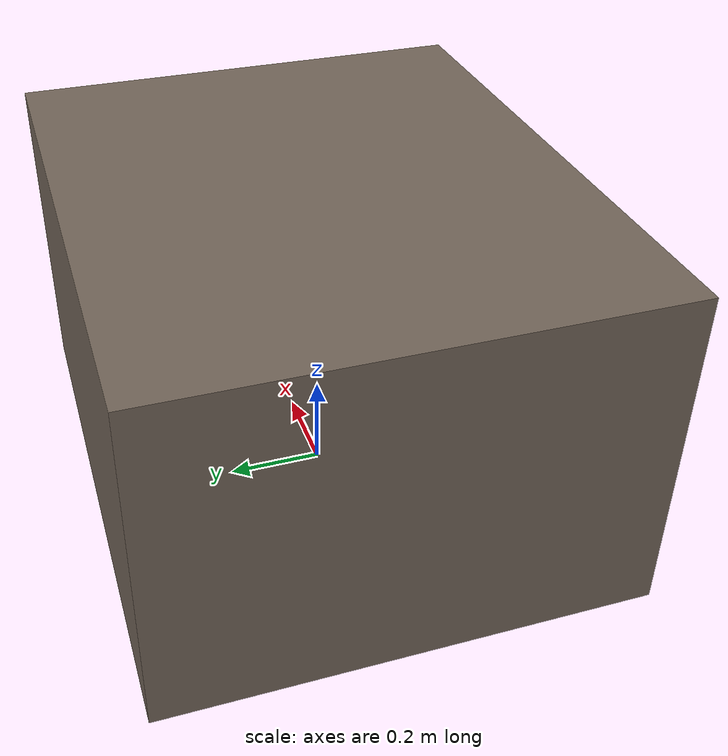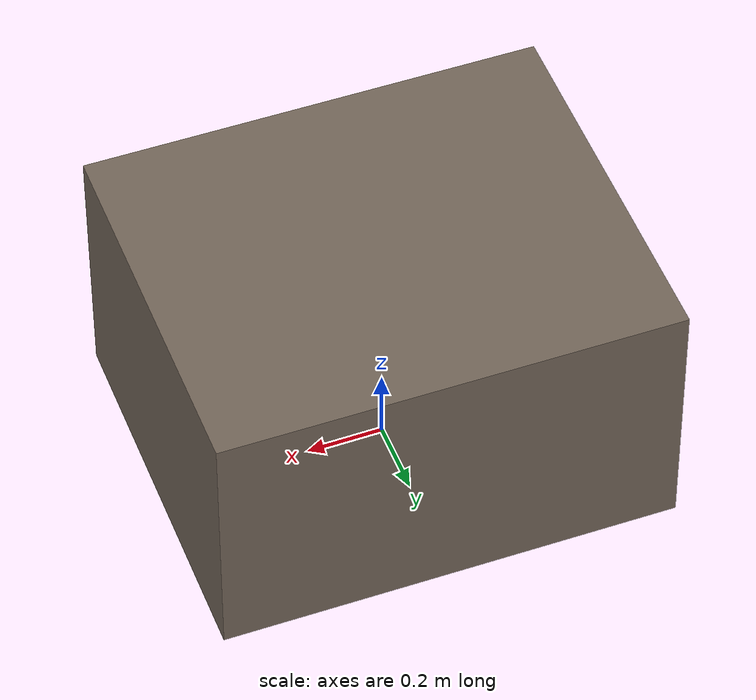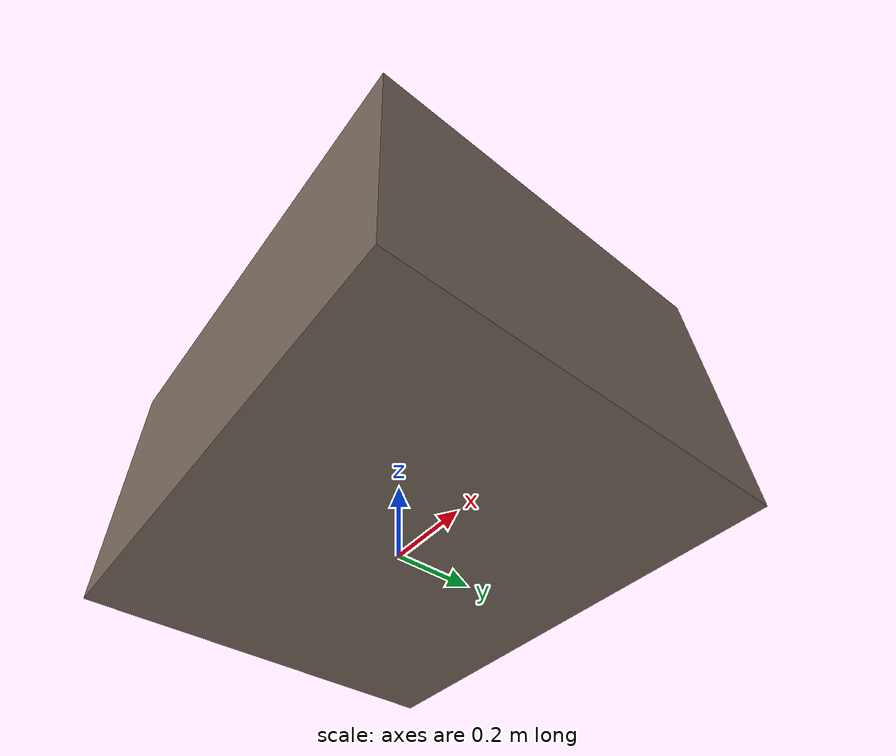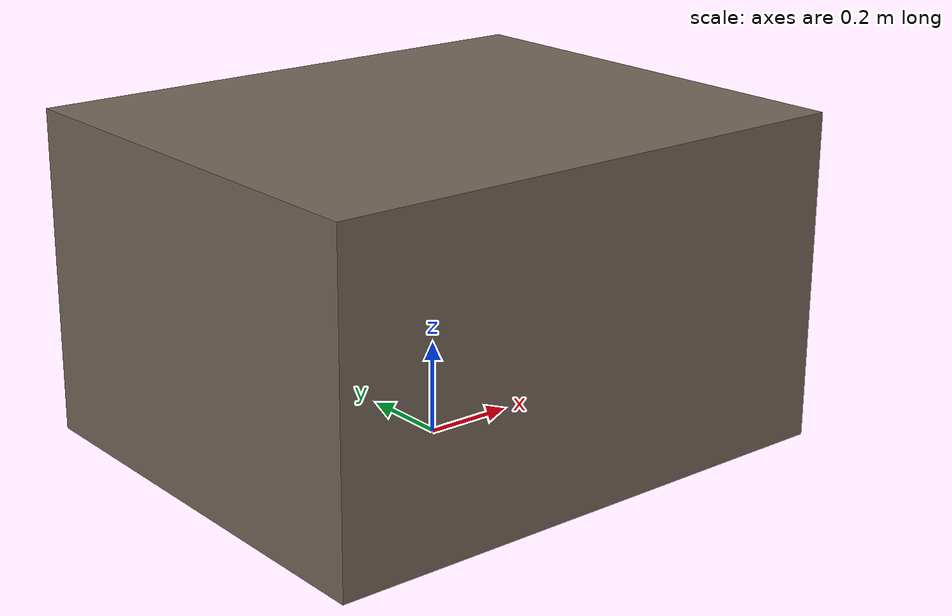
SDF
<?xml version="1.0"?>
<sdf version="1.7">
  <model name="simple_rock">
    <static>true</static>
    <link name="link">
      <collision name="collision">
        <pose>0 0 0.35 0 0 0</pose>
        <geometry>
          <box>
            <size>1.2 1.0 0.7</size>
          </box>
        </geometry>
      </collision>
      <visual name="visual">
        <pose>0 0 0.35 0 0 0</pose>
        <geometry>
          <box>
            <size>1.2 1.0 0.7</size>
          </box>
        </geometry>
        <material>
          <ambient>0.35 0.32 0.28 1</ambient>
          <diffuse>0.45 0.40 0.35 1</diffuse>
          <specular>0.05 0.05 0.05 1</specular>
        </material>
      </visual>
    </link>
  </model>
</sdf>
